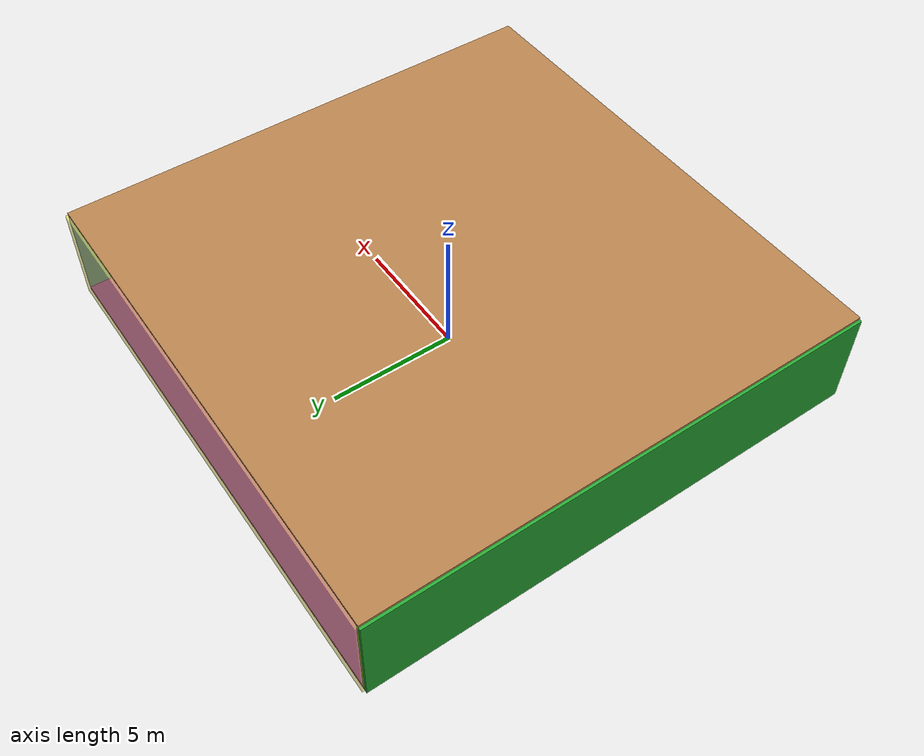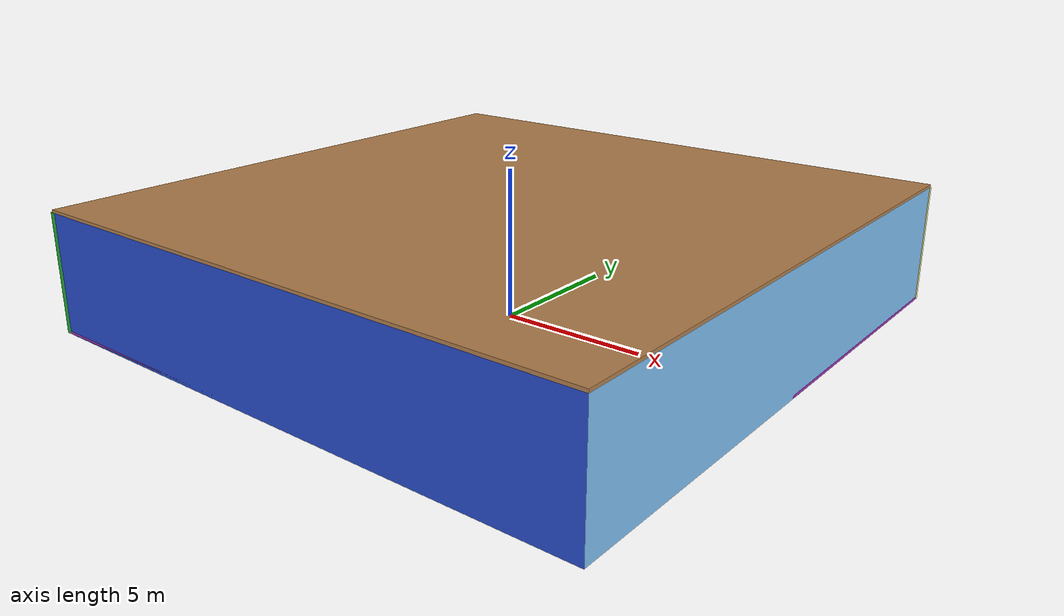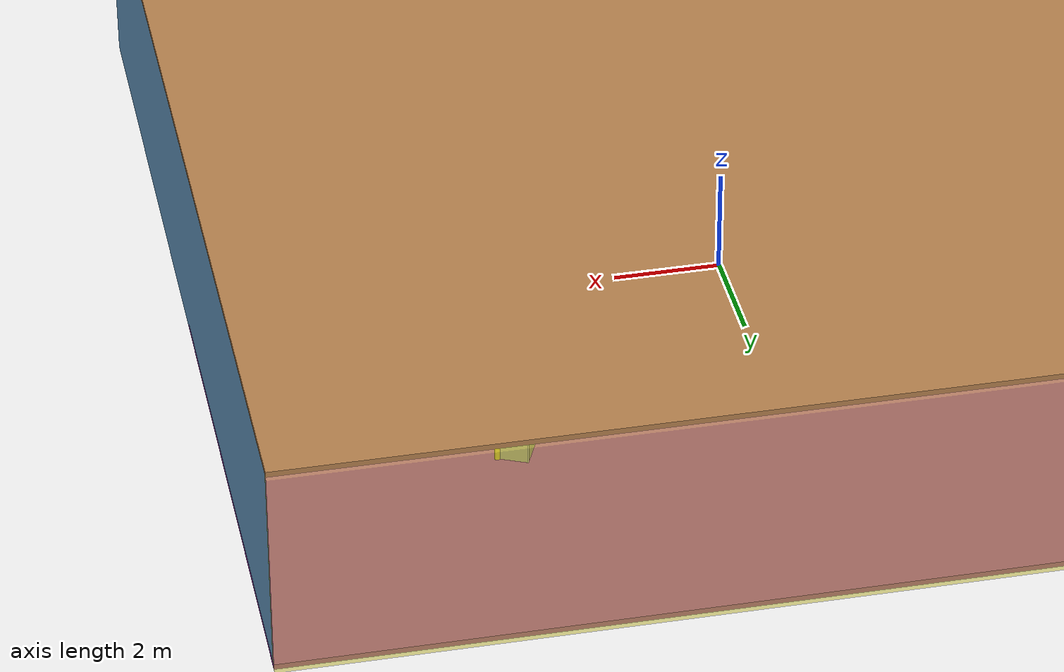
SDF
<sdf version="1.4">
 <world name="default">
  <physics type="ode">
   <max_step_size>0.001</max_step_size>
   <real_time_factor>1</real_time_factor>
   <real_time_update_rate>1000</real_time_update_rate>
   <gravity>0 0 -9.8</gravity>
  </physics>
  <scene><ambient>0.4 0.4 0.4 1</ambient><background>0.7 0.7 0.7 1</background><shadows>1</shadows></scene>
  <model name="Surrounding">
   <static>1</static>
   <link name="Ceiling">
    <collision name="Ceiling_Collision"><geometry><box><size>20 20 0.1</size></box></geometry></collision>
    <visual name="Ceiling_Visual">
     <geometry><box><size>20 20 0.1</size></box></geometry>
     <material>
      <script><uri>file://media/materials/scripts/gazebo.material</uri><name>Gazebo/WoodFloor</name></script>
     </material>
    </visual>
    <pose>0 0 4.05 0 0 0</pose>
   </link>
   <link name="Wall_South">
    <collision name="Wall_South_Collision">
     <geometry><box><size>20 0 4</size></box></geometry>
     <pose>0 0 2 0 -0 0</pose>
    </collision>
    <visual name="Wall_South_Visual">
     <pose>0 0 2 0 -0 0</pose>
     <geometry><box><size>20 0 4</size></box></geometry>
     <material>
      <script><uri>file://media/materials/scripts/gazebo.material</uri><name>Gazebo/BlueLaser</name></script>
     </material>
    </visual>
    <velocity_decay><linear>0</linear><angular>0</angular></velocity_decay>
    <pose>0 -10 0 0 -0 0</pose>
   </link>
   <link name="Wall_East">
    <collision name="Wall_21_Collision">
     <geometry><box><size>20 0 4</size></box></geometry>
     <pose>0 0 2 0 -0 0</pose>
    </collision>
    <visual name="Wall_21_Visual">
     <pose>0 0 2 0 -0 0</pose>
     <geometry><box><size>20 0 4</size></box></geometry>
     <material>
      <script><uri>file://media/materials/scripts/gazebo.material</uri><name>Gazebo/SkyBlue</name></script>
     </material>
    </visual>
    <velocity_decay><linear>0</linear><angular>0</angular></velocity_decay>
    <pose>10 0 0 0 -0 1.5708</pose>
   </link>
   <link name="Wall_North">
    <collision name="Wall_22_Collision">
     <geometry><box><size>20 0.2 4</size></box></geometry>
     <pose>0 0 2 0 -0 0</pose>
    </collision>
    <visual name="Wall_22_Visual">
     <pose>0 0 2 0 -0 0</pose>
     <geometry><box><size>20 0.2 4</size></box></geometry>
     <material>
      <script>
       <uri>file://media/materials/scripts/gazebo.material</uri>
       <name>Gazebo/YellowTransparent</name>
      </script>
     </material>
    </visual>
    <velocity_decay><linear>0</linear><angular>0</angular></velocity_decay>
    <pose>0 10 0 0 -0 0</pose>
   </link>
   <link name="Wall_West">
    <collision name="Wall_23_Collision">
     <geometry><box><size>20 0.2 4</size></box></geometry>
     <pose>0 0 2 0 -0 0</pose>
    </collision>
    <visual name="Wall_23_Visual">
     <pose>0 0 2 0 -0 0</pose>
     <geometry><box><size>20 0.2 4</size></box></geometry>
     <material>
      <script><uri>file://media/materials/scripts/gazebo.material</uri><name>Gazebo/GreenGlow</name></script>
     </material>
    </visual>
    <velocity_decay><linear>0</linear><angular>0</angular></velocity_decay>
    <pose>-10 0 0 0 0 -1.5708</pose>
   </link>
   <link name="Ground_link">
    <collision name="collision">
     <pose>0 0 .05 0 -0 0</pose>
     <geometry><box><size>20 20 0.1</size></box></geometry>
    </collision>
    <visual name="visual">
     <pose>0 0 .05 0 -0 0</pose>
     <geometry><box><size>20 20 0.1</size></box></geometry>
     <material>
      <script><uri>file://media/materials/scripts/gazebo.material</uri><name>Gazebo/Purple</name></script>
     </material>
    </visual>
   </link>
   <static>1</static>
  </model>
  <spherical_coordinates>
   <surface_model>EARTH_WGS84</surface_model>
   <latitude_deg>0</latitude_deg>
   <longitude_deg>0</longitude_deg>
   <elevation>0</elevation>
   <heading_deg>0</heading_deg>
  </spherical_coordinates>
  <light name="lightball_0" type="diffuse">
   <diffuse>0.8 0.8 0.8 1</diffuse>
   <specular>0.2 0.2 0.2 1</specular>
   <attenuation>
    <range>100</range>
    <constant>0.7</constant>
    <linear>0.01</linear>
    <quadratic>0.001</quadratic>
   </attenuation>
   <direction>-0.5 0.1 -0.9</direction>
   <pose>7.80072729586 7.8780272893 3.57054821295 0 0 0</pose>
  </light>
  <light name="lightball_1" type="diffuse">
   <diffuse>0.8 0.8 0.8 1</diffuse>
   <specular>0.2 0.2 0.2 1</specular>
   <attenuation>
    <range>100</range>
    <constant>0.7</constant>
    <linear>0.01</linear>
    <quadratic>0.001</quadratic>
   </attenuation>
   <direction>-0.5 0.1 -0.9</direction>
   <pose>0.215341312408 5.89149664339 2.89690970463 0 0 0</pose>
  </light>
  <light name="lightball_2" type="diffuse">
   <diffuse>0.8 0.8 0.8 1</diffuse>
   <specular>0.2 0.2 0.2 1</specular>
   <attenuation>
    <range>100</range>
    <constant>0.7</constant>
    <linear>0.01</linear>
    <quadratic>0.001</quadratic>
   </attenuation>
   <direction>-0.5 0.1 -0.9</direction>
   <pose>-7.05721129337 9.25219056596 3.06548005908 0 0 0</pose>
  </light>
  <light name="lightball_3" type="diffuse">
   <diffuse>0.8 0.8 0.8 1</diffuse>
   <specular>0.2 0.2 0.2 1</specular>
   <attenuation>
    <range>100</range>
    <constant>0.7</constant>
    <linear>0.01</linear>
    <quadratic>0.001</quadratic>
   </attenuation>
   <direction>-0.5 0.1 -0.9</direction>
   <pose>2.8180851255 -5.59324426748 3.35617716317 0 0 0</pose>
  </light>
  <light name="lightball_4" type="diffuse">
   <diffuse>0.8 0.8 0.8 1</diffuse>
   <specular>0.2 0.2 0.2 1</specular>
   <attenuation>
    <range>100</range>
    <constant>0.7</constant>
    <linear>0.01</linear>
    <quadratic>0.001</quadratic>
   </attenuation>
   <direction>-0.5 0.1 -0.9</direction>
   <pose>-8.33685261353 0.423738920554 2.65923230051 0 0 0</pose>
  </light>
  <light name="lightball_5" type="diffuse">
   <diffuse>0.8 0.8 0.8 1</diffuse>
   <specular>0.2 0.2 0.2 1</specular>
   <attenuation>
    <range>100</range>
    <constant>0.7</constant>
    <linear>0.01</linear>
    <quadratic>0.001</quadratic>
   </attenuation>
   <direction>-0.5 0.1 -0.9</direction>
   <pose>-9.16182233719 -8.68827260294 2.46879984742 0 0 0</pose>
  </light>
  <light name="lightball_6" type="diffuse">
   <diffuse>0.8 0.8 0.8 1</diffuse>
   <specular>0.2 0.2 0.2 1</specular>
   <attenuation>
    <range>100</range>
    <constant>0.7</constant>
    <linear>0.01</linear>
    <quadratic>0.001</quadratic>
   </attenuation>
   <direction>-0.5 0.1 -0.9</direction>
   <pose>-0.171319172713 -2.83533131393 1.74528608792 0 0 0</pose>
  </light>
  <include><uri>model://cabinet</uri><pose>-7.54639820741 -7.2402631798 0 0 0 3.01754890113</pose></include>
  <include>
   <uri>model://textured_shapes</uri>
   <pose>-3.95337017078 -0.851478465757 0 0 0 0.58266747791</pose>
  </include>
  <include><uri>model://cabinet</uri><pose>-2.2830022552 4.51730632635 0 0 0 2.13126976445</pose></include>
  <include>
   <uri>model://construction_cone</uri>
   <pose>4.9518986366 -7.27035860231 0 0 0 1.12650707002</pose>
  </include>
  <include>
   <uri>model://robocup_3Dsim_goal</uri>
   <pose>4.83279216261 4.21221892482 0 0 0 2.72594267637</pose>
  </include>
 </world>
</sdf>

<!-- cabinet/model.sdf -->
<sdf version="1.5">
  <model name="cabinet">
    <static>true</static>
    <link name="cabinet_bottom_plate">
      <inertial>
        <pose>0 0 -1 0 0 0</pose>
        <inertia>
          <ixx>2.050000</ixx>
          <ixy>0</ixy>
          <ixz>0</ixz>
          <iyy>2.050000</iyy>
          <iyz>0</iyz>
          <izz>2.050000</izz>
        </inertia>
        <mass>25.000000</mass>
      </inertial>
      <collision name="cabinet_bottom_plate_geom">
        <pose>0 0 0.010000 0 0 0</pose>
        <geometry>
          <box>
            <size>0.450000 0.450000 0.020000</size>
          </box>
        </geometry>
      </collision>
      <visual name="cabinet_bottom_plate_geom_visual">
        <pose>0 0 0.010000 0 0 0</pose>
        <geometry>
          <box>
            <size>0.450000 0.450000 0.020000</size>
          </box>
        </geometry>
        <material>
          <script>
            <uri>model://media/materials/scripts/gazebo.material</uri>
            <name>Gazebo/Wood</name>
          </script>
        </material>
      </visual>
      <collision name="cabinet_bottom_plate_geom_cabinet_back_plate">
        <pose>0.235000 0 0.510000 0 0 0</pose>
        <geometry>
          <box>
            <size>0.020000 0.450000 1.020000</size>
          </box>
        </geometry>
      </collision>
      <visual name="cabinet_bottom_plate_geom_cabinet_back_plate_visual">
        <pose>0.235000 0 0.510000 0 0 0</pose>
        <geometry>
          <box>
            <size>0.020000 0.450000 1.020000</size>
          </box>
        </geometry>
        <material>
          <script>
            <uri>model://media/materials/scripts/gazebo.material</uri>
            <name>Gazebo/Wood</name>
          </script>
        </material>
      </visual>
      <collision name="cabinet_bottom_plate_geom_cabinet_left_plate">
        <pose>0 0.235000 0.510000 0 0 0</pose>
        <geometry>
          <box>
            <size>0.450000 0.020000 1.020000</size>
          </box>
        </geometry>
      </collision>
      <visual name="cabinet_bottom_plate_geom_cabinet_left_plate_visual">
        <pose>0 0.235000 0.510000 0 0 0</pose>
        <geometry>
          <box>
            <size>0.450000 0.020000 1.020000</size>
          </box>
        </geometry>
        <material>
          <script>
            <uri>model://media/materials/scripts/gazebo.material</uri>
            <name>Gazebo/Wood</name>
          </script>
        </material>
      </visual>
      <collision name="cabinet_bottom_plate_geom_cabinet_middle_plate">
        <pose>0 0 0.510000 0 0 0</pose>
        <geometry>
          <box>
            <size>0.450000 0.450000 0.020000</size>
          </box>
        </geometry>
      </collision>
      <visual name="cabinet_bottom_plate_geom_cabinet_middle_plate_visual">
        <pose>0 0 0.510000 0 0 0</pose>
        <geometry>
          <box>
            <size>0.450000 0.450000 0.020000</size>
          </box>
        </geometry>
        <material>
          <script>
            <uri>model://media/materials/scripts/gazebo.material</uri>
            <name>Gazebo/Wood</name>
          </script>
        </material>
      </visual>
      <collision name="cabinet_bottom_plate_geom_cabinet_right_plate">
        <pose>0 -0.235000 0.510000 0 0 0</pose>
        <geometry>
          <box>
            <size>0.450000 0.020000 1.020000</size>
          </box>
        </geometry>
      </collision>
      <visual name="cabinet_bottom_plate_geom_cabinet_right_plate_visual">
        <pose>0 -0.235000 0.510000 0 0 0</pose>
        <geometry>
          <box>
            <size>0.450000 0.020000 1.020000</size>
          </box>
        </geometry>
        <material>
          <script>
            <uri>model://media/materials/scripts/gazebo.material</uri>
            <name>Gazebo/Wood</name>
          </script>
        </material>
      </visual>
      <collision name="cabinet_bottom_plate_geom_cabinet_top_plate">
        <pose>0 0 1.010000 0 0 0</pose>
        <geometry>
          <box>
            <size>0.450000 0.450000 0.020000</size>
          </box>
        </geometry>
      </collision>
      <visual name="cabinet_bottom_plate_geom_cabinet_top_plate_visual">
        <pose>0 0 1.010000 0 0 0</pose>
        <geometry>
          <box>
            <size>0.450000 0.450000 0.020000</size>
          </box>
        </geometry>
        <material>
          <script>
            <uri>model://media/materials/scripts/gazebo.material</uri>
            <name>Gazebo/Wood</name>
          </script>
        </material>
      </visual>
    </link>
  </model>
</sdf>

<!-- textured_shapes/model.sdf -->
<sdf version="1.6">
  <model name="textured_shapes">
    <pose>0 0 0.5 0 0 0</pose>
    <link name="box">
      <pose>0 -1.5 0 0 0 0</pose>
      <collision name="collision">
        <geometry>
          <box>
            <size>1 1 1</size>
          </box>
        </geometry>
      </collision>
      <visual name="visual">
        <geometry>
          <box>
            <size>1 1 1</size>
          </box>
        </geometry>
        <material>
          <script>
            <uri>model://../model_source/models/textured_shapes/materials/scripts</uri>
            <uri>model://../model_source/models/textured_shapes/materials/textures</uri>
            <name>TexturedShape/Squares</name>
          </script>
        </material>
      </visual>
    </link>
    <link name="sphere">
      <collision name="collision">
        <geometry>
          <sphere>
            <radius>0.5</radius>
          </sphere>
        </geometry>
      </collision>
      <visual name="visual">
        <geometry>
          <sphere>
            <radius>0.5</radius>
          </sphere>
        </geometry>
        <material>
          <script>
            <uri>model://../model_source/models/textured_shapes/materials/scripts</uri>
            <uri>model://../model_source/models/textured_shapes/materials/textures</uri>
            <name>TexturedShape/Squares</name>
          </script>
        </material>
      </visual>
    </link>
    <link name="cylinder">
      <pose>0 1.5 0 0 0 0</pose>
      <collision name="collision">
        <geometry>
          <cylinder>
            <radius>0.5</radius>
            <length>1</length>
          </cylinder>
        </geometry>
      </collision>
      <visual name="visual">
        <geometry>
          <cylinder>
            <radius>0.5</radius>
            <length>1</length>
          </cylinder>
        </geometry>
        <material>
          <script>
            <uri>model://../model_source/models/textured_shapes/materials/scripts</uri>
            <uri>model://../model_source/models/textured_shapes/materials/textures</uri>
            <name>TexturedShape/Squares</name>
          </script>
        </material>
      </visual>
    </link>
  </model>
</sdf>

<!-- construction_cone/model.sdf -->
<sdf version="1.5">
  <model name="Construction Cone">
    <link name="link">
      <collision name="collision">
        <geometry>
          <mesh>
            <scale>10 10 10</scale>
            <uri>file://isr-testbed/construction_cone/meshes/construction_cone.dae</uri>
          </mesh>
        </geometry>
      </collision>
      <visual name="visual">
        <geometry>
          <mesh>
            <scale>10 10 10</scale>
            <uri>file://isr-testbed/construction_cone/meshes/construction_cone.dae</uri>
          </mesh>
        </geometry>
      </visual>
    </link>
  </model>
</sdf>

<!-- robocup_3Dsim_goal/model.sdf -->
<sdf version="1.5">
  <model name="robocup_3d_goal">
    <static>true</static>
    <link name="left_post">
      <pose>0 1.05 0.45 0 0 0</pose>
      <collision name="collision">
        <geometry>
          <cylinder>
            <radius>0.05</radius>
            <length>0.9</length>
          </cylinder>
        </geometry>
      </collision>
      <visual name="visual">
        <geometry>
          <cylinder>
            <radius>0.05</radius>
            <length>0.9</length>
          </cylinder>
        </geometry>
        <material>
          <script>
            <uri>file://media/materials/scripts/gazebo.material</uri>
            <name>Gazebo/ZincYellow</name>
          </script>
        </material>
      </visual>
    </link>
    <link name="left_support_horiz_lower">
      <pose>0.30 1.05 0.01 0 0 0</pose>
      <collision name="collision">
        <geometry>
          <box>
            <size>0.50 0.02 0.02</size>
          </box>
        </geometry>
      </collision>
      <visual name="visual">
        <geometry>
          <box>
            <size>0.50 0.02 0.02</size>
          </box>
        </geometry>
        <material>
          <script>
            <uri>file://media/materials/scripts/gazebo.material</uri>
            <name>Gazebo/White</name>
          </script>
        </material>
      </visual>
    </link>
    <link name="left_support_horiz_upper">
      <pose>0.30 1.05 0.79 0 0 0</pose>
      <collision name="collision">
        <geometry>
          <box>
            <size>0.50 0.02 0.02</size>
          </box>
        </geometry>
      </collision>
      <visual name="visual">
        <geometry>
          <box>
            <size>0.50 0.02 0.02</size>
          </box>
        </geometry>
        <material>
          <script>
            <uri>file://media/materials/scripts/gazebo.material</uri>
            <name>Gazebo/White</name>
          </script>
        </material>
      </visual>
    </link>
    <link name="left_support_vertical">
      <pose>0.56 1.05 0.4 0 1.5708 0</pose>
      <collision name="collision">
        <geometry>
          <box>
            <size>0.80 0.02 0.02</size>
          </box>
        </geometry>
      </collision>
      <visual name="visual">
        <geometry>
          <box>
            <size>0.80 0.02 0.02</size>
          </box>
        </geometry>
        <material>
          <script>
            <uri>file://media/materials/scripts/gazebo.material</uri>
            <name>Gazebo/White</name>
          </script>
        </material>
      </visual>
    </link>
    <link name="right_support_horiz_lower">
      <pose>0.30 -1.05 0.01 0 0 0</pose>
      <collision name="collision">
        <geometry>
          <box>
            <size>0.50 0.02 0.02</size>
          </box>
        </geometry>
      </collision>
      <visual name="visual">
        <geometry>
          <box>
            <size>0.50 0.02 0.02</size>
          </box>
        </geometry>
        <material>
          <script>
            <uri>file://media/materials/scripts/gazebo.material</uri>
            <name>Gazebo/White</name>
          </script>
        </material>
      </visual>
    </link>
    <link name="right_support_horiz_upper">
      <pose>0.30 -1.05 0.79 0 0 0</pose>
      <collision name="collision">
        <geometry>
          <box>
            <size>0.50 0.02 0.02</size>
          </box>
        </geometry>
      </collision>
      <visual name="visual">
        <geometry>
          <box>
            <size>0.50 0.02 0.02</size>
          </box>
        </geometry>
        <material>
          <script>
            <uri>file://media/materials/scripts/gazebo.material</uri>
            <name>Gazebo/White</name>
          </script>
        </material>
      </visual>
    </link>
    <link name="right_support_vertical">
      <pose>0.56 -1.05 0.4 0 1.5708 0</pose>
      <collision name="collision">
        <geometry>
          <box>
            <size>0.80 0.02 0.02</size>
          </box>
        </geometry>
      </collision>
      <visual name="visual">
        <geometry>
          <box>
            <size>0.80 0.02 0.02</size>
          </box>
        </geometry>
        <material>
          <script>
            <uri>file://media/materials/scripts/gazebo.material</uri>
            <name>Gazebo/White</name>
          </script>
        </material>
      </visual>
    </link>
    <link name="center_support_horiz_lower">
      <pose>0.56 0 0.01 0 1.5708 0</pose>
      <collision name="collision">
        <geometry>
          <box>
            <size>0.02 2.08 0.02</size>
          </box>
        </geometry>
      </collision>
      <visual name="visual">
        <geometry>
          <box>
            <size>0.02 2.08 0.02</size>
          </box>
        </geometry>
        <material>
          <script>
            <uri>file://media/materials/scripts/gazebo.material</uri>
            <name>Gazebo/White</name>
          </script>
        </material>
      </visual>
    </link>
    <link name="center_support_horiz_upper">
      <pose>0.56 0 0.79 0 1.5708 0</pose>
      <collision name="collision">
        <geometry>
          <box>
            <size>0.02 2.08 0.02</size>
          </box>
        </geometry>
      </collision>
      <visual name="visual">
        <geometry>
          <box>
            <size>0.02 2.08 0.02</size>
          </box>
        </geometry>
        <material>
          <script>
            <uri>file://media/materials/scripts/gazebo.material</uri>
            <name>Gazebo/White</name>
          </script>
        </material>
      </visual>
    </link>
    <link name="right_post">
      <pose>0 -1.05 0.45 0 0 0</pose>
      <collision name="collision">
        <geometry>
          <cylinder>
            <radius>0.05</radius>
            <length>0.9</length>
          </cylinder>
        </geometry>
      </collision>
      <visual name="visual">
        <geometry>
          <cylinder>
            <radius>0.05</radius>
            <length>0.9</length>
          </cylinder>
        </geometry>
        <material>
          <script>
            <uri>file://media/materials/scripts/gazebo.material</uri>
            <name>Gazebo/ZincYellow</name>
          </script>
        </material>
      </visual>
    </link>
    <link name="crossbar">
      <pose>0 0 0.85 1.57 1.57 0</pose>
      <collision name="collision">
        <geometry>
          <cylinder>
            <radius>0.05</radius>
            <length>2.0</length>
          </cylinder>
        </geometry>
      </collision>
      <visual name="visual">
        <geometry>
          <cylinder>
            <radius>0.05</radius>
            <length>2.0</length>
          </cylinder>
        </geometry>
        <material>
          <script>
            <uri>file://media/materials/scripts/gazebo.material</uri>
            <name>Gazebo/ZincYellow</name>
          </script>
        </material>
      </visual>
    </link>
    <link name="center_net">
      <pose>0.56 0 0.40 0 0 0</pose>
      <collision name="collision">
        <geometry>
          <box>
            <size>0.01 2.1 0.80</size>
          </box>
        </geometry>
      </collision>
      <visual name="visual">
        <geometry>
          <box>
            <size>0.01 2.1 0.80</size>
          </box>
        </geometry>
        <material>
          <script>
            <uri>model://../model_source/models/robocup09_spl_field/materials/scripts/</uri>
            <uri>model://../model_source/models/robocup09_spl_field/materials/textures/</uri>
            <name>RoboCup/Net</name>
          </script>
        </material>
      </visual>
    </link>
    <link name="left_net">
      <pose>0.30 1.05 0.40 0 0 0</pose>
      <collision name="collision">
        <geometry>
          <box>
            <size>0.50 0.01 0.76</size>
          </box>
        </geometry>
      </collision>
      <visual name="visual">
        <geometry>
          <box>
            <size>0.50 0.01 0.76</size>
          </box>
        </geometry>
        <material>
          <script>
            <uri>model://../model_source/models/robocup09_spl_field/materials/scripts/</uri>
            <uri>model://../model_source/models/robocup09_spl_field/materials/textures/</uri>
            <name>RoboCup/Net</name>
          </script>
        </material>
      </visual>
    </link>
    <link name="right_net">
      <pose>0.30 -1.05 0.40 0 0 0</pose>
      <collision name="collision">
        <geometry>
          <box>
            <size>0.50 0.01 0.76</size>
          </box>
        </geometry>
      </collision>
      <visual name="visual">
        <geometry>
          <box>
            <size>0.50 0.01 0.76</size>
          </box>
        </geometry>
        <material>
          <script>
            <uri>model://../model_source/models/robocup09_spl_field/materials/scripts/</uri>
            <uri>model://../model_source/models/robocup09_spl_field/materials/textures/</uri>
            <name>RoboCup/Net</name>
          </script>
        </material>
      </visual>
    </link>
  </model>
</sdf>
